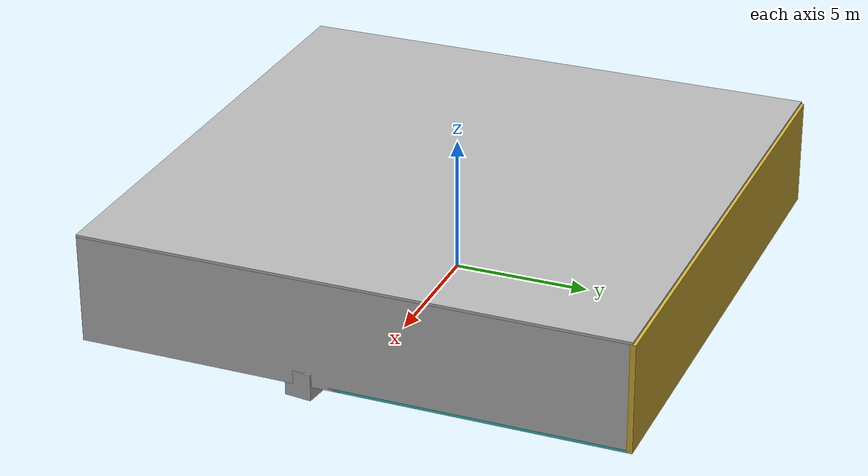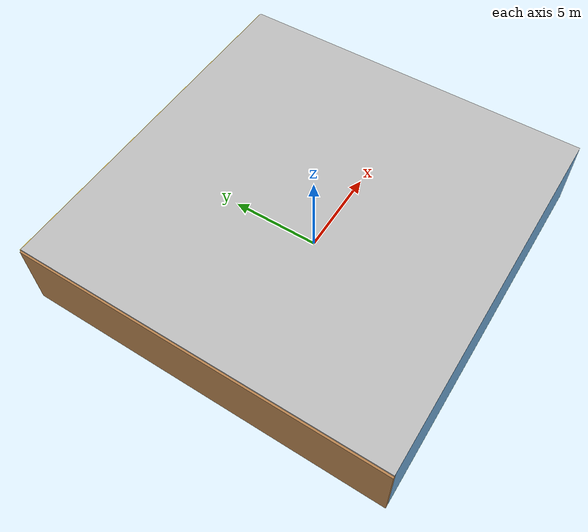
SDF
<sdf version="1.4">
 <world name="default">
  <physics type="ode">
   <max_step_size>0.001</max_step_size>
   <real_time_factor>1</real_time_factor>
   <real_time_update_rate>1000</real_time_update_rate>
   <gravity>0 0 -9.8</gravity>
  </physics>
  <scene><ambient>0.4 0.4 0.4 1</ambient><background>0.7 0.7 0.7 1</background><shadows>1</shadows></scene>
  <model name="Surrounding">
   <static>1</static>
   <link name="Ceiling">
    <collision name="Ceiling_Collision"><geometry><box><size>20 20 0.1</size></box></geometry></collision>
    <visual name="Ceiling_Visual">
     <geometry><box><size>20 20 0.1</size></box></geometry>
     <material>
      <script><uri>file://media/materials/scripts/gazebo.material</uri><name>Gazebo/LightOn</name></script>
     </material>
    </visual>
    <pose>0 0 4.05 0 0 0</pose>
   </link>
   <link name="Wall_South">
    <collision name="Wall_South_Collision">
     <geometry><box><size>20 0 4</size></box></geometry>
     <pose>0 0 2 0 -0 0</pose>
    </collision>
    <visual name="Wall_South_Visual">
     <pose>0 0 2 0 -0 0</pose>
     <geometry><box><size>20 0 4</size></box></geometry>
     <material>
      <script><uri>file://media/materials/scripts/gazebo.material</uri><name>Gazebo/SkyBlue</name></script>
     </material>
    </visual>
    <velocity_decay><linear>0</linear><angular>0</angular></velocity_decay>
    <pose>0 -10 0 0 -0 0</pose>
   </link>
   <link name="Wall_East">
    <collision name="Wall_21_Collision">
     <geometry><box><size>20 0 4</size></box></geometry>
     <pose>0 0 2 0 -0 0</pose>
    </collision>
    <visual name="Wall_21_Visual">
     <pose>0 0 2 0 -0 0</pose>
     <geometry><box><size>20 0 4</size></box></geometry>
     <material>
      <script><uri>file://media/materials/scripts/gazebo.material</uri><name>Gazebo/CloudySky</name></script>
     </material>
    </visual>
    <velocity_decay><linear>0</linear><angular>0</angular></velocity_decay>
    <pose>10 0 0 0 -0 1.5708</pose>
   </link>
   <link name="Wall_North">
    <collision name="Wall_22_Collision">
     <geometry><box><size>20 0.2 4</size></box></geometry>
     <pose>0 0 2 0 -0 0</pose>
    </collision>
    <visual name="Wall_22_Visual">
     <pose>0 0 2 0 -0 0</pose>
     <geometry><box><size>20 0.2 4</size></box></geometry>
     <material>
      <script><uri>file://media/materials/scripts/gazebo.material</uri><name>Gazebo/Gold</name></script>
     </material>
    </visual>
    <velocity_decay><linear>0</linear><angular>0</angular></velocity_decay>
    <pose>0 10 0 0 -0 0</pose>
   </link>
   <link name="Wall_West">
    <collision name="Wall_23_Collision">
     <geometry><box><size>20 0.2 4</size></box></geometry>
     <pose>0 0 2 0 -0 0</pose>
    </collision>
    <visual name="Wall_23_Visual">
     <pose>0 0 2 0 -0 0</pose>
     <geometry><box><size>20 0.2 4</size></box></geometry>
     <material>
      <script><uri>file://media/materials/scripts/gazebo.material</uri><name>Gazebo/WoodFloor</name></script>
     </material>
    </visual>
    <velocity_decay><linear>0</linear><angular>0</angular></velocity_decay>
    <pose>-10 0 0 0 0 -1.5708</pose>
   </link>
   <link name="Ground_link">
    <collision name="collision">
     <pose>0 0 .05 0 -0 0</pose>
     <geometry><box><size>20 20 0.1</size></box></geometry>
    </collision>
    <visual name="visual">
     <pose>0 0 .05 0 -0 0</pose>
     <geometry><box><size>20 20 0.1</size></box></geometry>
     <material>
      <script><uri>file://media/materials/scripts/gazebo.material</uri><name>Gazebo/TurquoiseGlow</name></script>
     </material>
    </visual>
   </link>
   <static>1</static>
  </model>
  <spherical_coordinates>
   <surface_model>EARTH_WGS84</surface_model>
   <latitude_deg>0</latitude_deg>
   <longitude_deg>0</longitude_deg>
   <elevation>0</elevation>
   <heading_deg>0</heading_deg>
  </spherical_coordinates>
  <light name="lightball_0" type="diffuse">
   <diffuse>0.8 0.8 0.8 1</diffuse>
   <specular>0.2 0.2 0.2 1</specular>
   <attenuation>
    <range>100</range>
    <constant>0.7</constant>
    <linear>0.01</linear>
    <quadratic>0.001</quadratic>
   </attenuation>
   <direction>-0.5 0.1 -0.9</direction>
   <pose>-9.44223632825 -1.61973570974 1.19315141893 0 0 0</pose>
  </light>
  <light name="lightball_1" type="diffuse">
   <diffuse>0.8 0.8 0.8 1</diffuse>
   <specular>0.2 0.2 0.2 1</specular>
   <attenuation>
    <range>100</range>
    <constant>0.7</constant>
    <linear>0.01</linear>
    <quadratic>0.001</quadratic>
   </attenuation>
   <direction>-0.5 0.1 -0.9</direction>
   <pose>4.84914793295 -7.08788851976 1.45331794647 0 0 0</pose>
  </light>
  <light name="lightball_2" type="diffuse">
   <diffuse>0.8 0.8 0.8 1</diffuse>
   <specular>0.2 0.2 0.2 1</specular>
   <attenuation>
    <range>100</range>
    <constant>0.7</constant>
    <linear>0.01</linear>
    <quadratic>0.001</quadratic>
   </attenuation>
   <direction>-0.5 0.1 -0.9</direction>
   <pose>4.76001567148 4.02294831834 1.48713486311 0 0 0</pose>
  </light>
  <light name="lightball_3" type="diffuse">
   <diffuse>0.8 0.8 0.8 1</diffuse>
   <specular>0.2 0.2 0.2 1</specular>
   <attenuation>
    <range>100</range>
    <constant>0.7</constant>
    <linear>0.01</linear>
    <quadratic>0.001</quadratic>
   </attenuation>
   <direction>-0.5 0.1 -0.9</direction>
   <pose>-1.78189362883 -5.05882615919 2.69667300936 0 0 0</pose>
  </light>
  <light name="lightball_4" type="diffuse">
   <diffuse>0.8 0.8 0.8 1</diffuse>
   <specular>0.2 0.2 0.2 1</specular>
   <attenuation>
    <range>100</range>
    <constant>0.7</constant>
    <linear>0.01</linear>
    <quadratic>0.001</quadratic>
   </attenuation>
   <direction>-0.5 0.1 -0.9</direction>
   <pose>-3.31692016053 -0.152808900937 3.56159140618 0 0 0</pose>
  </light>
  <light name="lightball_5" type="diffuse">
   <diffuse>0.8 0.8 0.8 1</diffuse>
   <specular>0.2 0.2 0.2 1</specular>
   <attenuation>
    <range>100</range>
    <constant>0.7</constant>
    <linear>0.01</linear>
    <quadratic>0.001</quadratic>
   </attenuation>
   <direction>-0.5 0.1 -0.9</direction>
   <pose>-4.62620887392 2.55235223836 3.04583238564 0 0 0</pose>
  </light>
  <light name="lightball_6" type="diffuse">
   <diffuse>0.8 0.8 0.8 1</diffuse>
   <specular>0.2 0.2 0.2 1</specular>
   <attenuation>
    <range>100</range>
    <constant>0.7</constant>
    <linear>0.01</linear>
    <quadratic>0.001</quadratic>
   </attenuation>
   <direction>-0.5 0.1 -0.9</direction>
   <pose>-1.45481103853 -4.58703033471 3.67631072079 0 0 0</pose>
  </light>
  <light name="lightball_7" type="diffuse">
   <diffuse>0.8 0.8 0.8 1</diffuse>
   <specular>0.2 0.2 0.2 1</specular>
   <attenuation>
    <range>100</range>
    <constant>0.7</constant>
    <linear>0.01</linear>
    <quadratic>0.001</quadratic>
   </attenuation>
   <direction>-0.5 0.1 -0.9</direction>
   <pose>-4.7389865504 -4.35277981693 3.11076978066 0 0 0</pose>
  </light>
  <light name="lightball_8" type="diffuse">
   <diffuse>0.8 0.8 0.8 1</diffuse>
   <specular>0.2 0.2 0.2 1</specular>
   <attenuation>
    <range>100</range>
    <constant>0.7</constant>
    <linear>0.01</linear>
    <quadratic>0.001</quadratic>
   </attenuation>
   <direction>-0.5 0.1 -0.9</direction>
   <pose>5.84469441858 9.26929310192 2.55420348715 0 0 0</pose>
  </light>
  <light name="lightball_9" type="diffuse">
   <diffuse>0.8 0.8 0.8 1</diffuse>
   <specular>0.2 0.2 0.2 1</specular>
   <attenuation>
    <range>100</range>
    <constant>0.7</constant>
    <linear>0.01</linear>
    <quadratic>0.001</quadratic>
   </attenuation>
   <direction>-0.5 0.1 -0.9</direction>
   <pose>-4.52462169159 1.09341811569 3.41408499917 0 0 0</pose>
  </light>
  <light name="lightball_10" type="diffuse">
   <diffuse>0.8 0.8 0.8 1</diffuse>
   <specular>0.2 0.2 0.2 1</specular>
   <attenuation>
    <range>100</range>
    <constant>0.7</constant>
    <linear>0.01</linear>
    <quadratic>0.001</quadratic>
   </attenuation>
   <direction>-0.5 0.1 -0.9</direction>
   <pose>6.05726380245 -7.1829299173 1.74935007968 0 0 0</pose>
  </light>
  <light name="lightball_11" type="diffuse">
   <diffuse>0.8 0.8 0.8 1</diffuse>
   <specular>0.2 0.2 0.2 1</specular>
   <attenuation>
    <range>100</range>
    <constant>0.7</constant>
    <linear>0.01</linear>
    <quadratic>0.001</quadratic>
   </attenuation>
   <direction>-0.5 0.1 -0.9</direction>
   <pose>7.63437856759 -1.26406982941 1.49095984146 0 0 0</pose>
  </light>
  <light name="lightball_12" type="diffuse">
   <diffuse>0.8 0.8 0.8 1</diffuse>
   <specular>0.2 0.2 0.2 1</specular>
   <attenuation>
    <range>100</range>
    <constant>0.7</constant>
    <linear>0.01</linear>
    <quadratic>0.001</quadratic>
   </attenuation>
   <direction>-0.5 0.1 -0.9</direction>
   <pose>-0.652152397067 -0.00712110318958 0.689140466874 0 0 0</pose>
  </light>
  <light name="lightball_13" type="diffuse">
   <diffuse>0.8 0.8 0.8 1</diffuse>
   <specular>0.2 0.2 0.2 1</specular>
   <attenuation>
    <range>100</range>
    <constant>0.7</constant>
    <linear>0.01</linear>
    <quadratic>0.001</quadratic>
   </attenuation>
   <direction>-0.5 0.1 -0.9</direction>
   <pose>2.97861694004 -5.96896744873 0.60635314236 0 0 0</pose>
  </light>
  <include>
   <uri>model://robocup_3Dsim_goal</uri>
   <pose>-7.41337736833 -7.16034881305 0 0 0 2.1314991432</pose>
  </include>
  <include>
   <uri>model://textured_shapes</uri>
   <pose>8.03563660763 -1.54748503069 0 0 0 1.45392436423</pose>
  </include>
 </world>
</sdf>

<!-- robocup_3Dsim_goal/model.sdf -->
<sdf version="1.5">
  <model name="robocup_3d_goal">
    <static>true</static>
    <link name="left_post">
      <pose>0 1.05 0.45 0 0 0</pose>
      <collision name="collision">
        <geometry>
          <cylinder>
            <radius>0.05</radius>
            <length>0.9</length>
          </cylinder>
        </geometry>
      </collision>
      <visual name="visual">
        <geometry>
          <cylinder>
            <radius>0.05</radius>
            <length>0.9</length>
          </cylinder>
        </geometry>
        <material>
          <script>
            <uri>file://media/materials/scripts/gazebo.material</uri>
            <name>Gazebo/ZincYellow</name>
          </script>
        </material>
      </visual>
    </link>
    <link name="left_support_horiz_lower">
      <pose>0.30 1.05 0.01 0 0 0</pose>
      <collision name="collision">
        <geometry>
          <box>
            <size>0.50 0.02 0.02</size>
          </box>
        </geometry>
      </collision>
      <visual name="visual">
        <geometry>
          <box>
            <size>0.50 0.02 0.02</size>
          </box>
        </geometry>
        <material>
          <script>
            <uri>file://media/materials/scripts/gazebo.material</uri>
            <name>Gazebo/White</name>
          </script>
        </material>
      </visual>
    </link>
    <link name="left_support_horiz_upper">
      <pose>0.30 1.05 0.79 0 0 0</pose>
      <collision name="collision">
        <geometry>
          <box>
            <size>0.50 0.02 0.02</size>
          </box>
        </geometry>
      </collision>
      <visual name="visual">
        <geometry>
          <box>
            <size>0.50 0.02 0.02</size>
          </box>
        </geometry>
        <material>
          <script>
            <uri>file://media/materials/scripts/gazebo.material</uri>
            <name>Gazebo/White</name>
          </script>
        </material>
      </visual>
    </link>
    <link name="left_support_vertical">
      <pose>0.56 1.05 0.4 0 1.5708 0</pose>
      <collision name="collision">
        <geometry>
          <box>
            <size>0.80 0.02 0.02</size>
          </box>
        </geometry>
      </collision>
      <visual name="visual">
        <geometry>
          <box>
            <size>0.80 0.02 0.02</size>
          </box>
        </geometry>
        <material>
          <script>
            <uri>file://media/materials/scripts/gazebo.material</uri>
            <name>Gazebo/White</name>
          </script>
        </material>
      </visual>
    </link>
    <link name="right_support_horiz_lower">
      <pose>0.30 -1.05 0.01 0 0 0</pose>
      <collision name="collision">
        <geometry>
          <box>
            <size>0.50 0.02 0.02</size>
          </box>
        </geometry>
      </collision>
      <visual name="visual">
        <geometry>
          <box>
            <size>0.50 0.02 0.02</size>
          </box>
        </geometry>
        <material>
          <script>
            <uri>file://media/materials/scripts/gazebo.material</uri>
            <name>Gazebo/White</name>
          </script>
        </material>
      </visual>
    </link>
    <link name="right_support_horiz_upper">
      <pose>0.30 -1.05 0.79 0 0 0</pose>
      <collision name="collision">
        <geometry>
          <box>
            <size>0.50 0.02 0.02</size>
          </box>
        </geometry>
      </collision>
      <visual name="visual">
        <geometry>
          <box>
            <size>0.50 0.02 0.02</size>
          </box>
        </geometry>
        <material>
          <script>
            <uri>file://media/materials/scripts/gazebo.material</uri>
            <name>Gazebo/White</name>
          </script>
        </material>
      </visual>
    </link>
    <link name="right_support_vertical">
      <pose>0.56 -1.05 0.4 0 1.5708 0</pose>
      <collision name="collision">
        <geometry>
          <box>
            <size>0.80 0.02 0.02</size>
          </box>
        </geometry>
      </collision>
      <visual name="visual">
        <geometry>
          <box>
            <size>0.80 0.02 0.02</size>
          </box>
        </geometry>
        <material>
          <script>
            <uri>file://media/materials/scripts/gazebo.material</uri>
            <name>Gazebo/White</name>
          </script>
        </material>
      </visual>
    </link>
    <link name="center_support_horiz_lower">
      <pose>0.56 0 0.01 0 1.5708 0</pose>
      <collision name="collision">
        <geometry>
          <box>
            <size>0.02 2.08 0.02</size>
          </box>
        </geometry>
      </collision>
      <visual name="visual">
        <geometry>
          <box>
            <size>0.02 2.08 0.02</size>
          </box>
        </geometry>
        <material>
          <script>
            <uri>file://media/materials/scripts/gazebo.material</uri>
            <name>Gazebo/White</name>
          </script>
        </material>
      </visual>
    </link>
    <link name="center_support_horiz_upper">
      <pose>0.56 0 0.79 0 1.5708 0</pose>
      <collision name="collision">
        <geometry>
          <box>
            <size>0.02 2.08 0.02</size>
          </box>
        </geometry>
      </collision>
      <visual name="visual">
        <geometry>
          <box>
            <size>0.02 2.08 0.02</size>
          </box>
        </geometry>
        <material>
          <script>
            <uri>file://media/materials/scripts/gazebo.material</uri>
            <name>Gazebo/White</name>
          </script>
        </material>
      </visual>
    </link>
    <link name="right_post">
      <pose>0 -1.05 0.45 0 0 0</pose>
      <collision name="collision">
        <geometry>
          <cylinder>
            <radius>0.05</radius>
            <length>0.9</length>
          </cylinder>
        </geometry>
      </collision>
      <visual name="visual">
        <geometry>
          <cylinder>
            <radius>0.05</radius>
            <length>0.9</length>
          </cylinder>
        </geometry>
        <material>
          <script>
            <uri>file://media/materials/scripts/gazebo.material</uri>
            <name>Gazebo/ZincYellow</name>
          </script>
        </material>
      </visual>
    </link>
    <link name="crossbar">
      <pose>0 0 0.85 1.57 1.57 0</pose>
      <collision name="collision">
        <geometry>
          <cylinder>
            <radius>0.05</radius>
            <length>2.0</length>
          </cylinder>
        </geometry>
      </collision>
      <visual name="visual">
        <geometry>
          <cylinder>
            <radius>0.05</radius>
            <length>2.0</length>
          </cylinder>
        </geometry>
        <material>
          <script>
            <uri>file://media/materials/scripts/gazebo.material</uri>
            <name>Gazebo/ZincYellow</name>
          </script>
        </material>
      </visual>
    </link>
    <link name="center_net">
      <pose>0.56 0 0.40 0 0 0</pose>
      <collision name="collision">
        <geometry>
          <box>
            <size>0.01 2.1 0.80</size>
          </box>
        </geometry>
      </collision>
      <visual name="visual">
        <geometry>
          <box>
            <size>0.01 2.1 0.80</size>
          </box>
        </geometry>
        <material>
          <script>
            <uri>model://../model_source/models/robocup09_spl_field/materials/scripts/</uri>
            <uri>model://../model_source/models/robocup09_spl_field/materials/textures/</uri>
            <name>RoboCup/Net</name>
          </script>
        </material>
      </visual>
    </link>
    <link name="left_net">
      <pose>0.30 1.05 0.40 0 0 0</pose>
      <collision name="collision">
        <geometry>
          <box>
            <size>0.50 0.01 0.76</size>
          </box>
        </geometry>
      </collision>
      <visual name="visual">
        <geometry>
          <box>
            <size>0.50 0.01 0.76</size>
          </box>
        </geometry>
        <material>
          <script>
            <uri>model://../model_source/models/robocup09_spl_field/materials/scripts/</uri>
            <uri>model://../model_source/models/robocup09_spl_field/materials/textures/</uri>
            <name>RoboCup/Net</name>
          </script>
        </material>
      </visual>
    </link>
    <link name="right_net">
      <pose>0.30 -1.05 0.40 0 0 0</pose>
      <collision name="collision">
        <geometry>
          <box>
            <size>0.50 0.01 0.76</size>
          </box>
        </geometry>
      </collision>
      <visual name="visual">
        <geometry>
          <box>
            <size>0.50 0.01 0.76</size>
          </box>
        </geometry>
        <material>
          <script>
            <uri>model://../model_source/models/robocup09_spl_field/materials/scripts/</uri>
            <uri>model://../model_source/models/robocup09_spl_field/materials/textures/</uri>
            <name>RoboCup/Net</name>
          </script>
        </material>
      </visual>
    </link>
  </model>
</sdf>

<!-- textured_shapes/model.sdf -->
<sdf version="1.6">
  <model name="textured_shapes">
    <pose>0 0 0.5 0 0 0</pose>
    <link name="box">
      <pose>0 -1.5 0 0 0 0</pose>
      <collision name="collision">
        <geometry>
          <box>
            <size>1 1 1</size>
          </box>
        </geometry>
      </collision>
      <visual name="visual">
        <geometry>
          <box>
            <size>1 1 1</size>
          </box>
        </geometry>
        <material>
          <script>
            <uri>model://../model_source/models/textured_shapes/materials/scripts</uri>
            <uri>model://../model_source/models/textured_shapes/materials/textures</uri>
            <name>TexturedShape/Squares</name>
          </script>
        </material>
      </visual>
    </link>
    <link name="sphere">
      <collision name="collision">
        <geometry>
          <sphere>
            <radius>0.5</radius>
          </sphere>
        </geometry>
      </collision>
      <visual name="visual">
        <geometry>
          <sphere>
            <radius>0.5</radius>
          </sphere>
        </geometry>
        <material>
          <script>
            <uri>model://../model_source/models/textured_shapes/materials/scripts</uri>
            <uri>model://../model_source/models/textured_shapes/materials/textures</uri>
            <name>TexturedShape/Squares</name>
          </script>
        </material>
      </visual>
    </link>
    <link name="cylinder">
      <pose>0 1.5 0 0 0 0</pose>
      <collision name="collision">
        <geometry>
          <cylinder>
            <radius>0.5</radius>
            <length>1</length>
          </cylinder>
        </geometry>
      </collision>
      <visual name="visual">
        <geometry>
          <cylinder>
            <radius>0.5</radius>
            <length>1</length>
          </cylinder>
        </geometry>
        <material>
          <script>
            <uri>model://../model_source/models/textured_shapes/materials/scripts</uri>
            <uri>model://../model_source/models/textured_shapes/materials/textures</uri>
            <name>TexturedShape/Squares</name>
          </script>
        </material>
      </visual>
    </link>
  </model>
</sdf>
